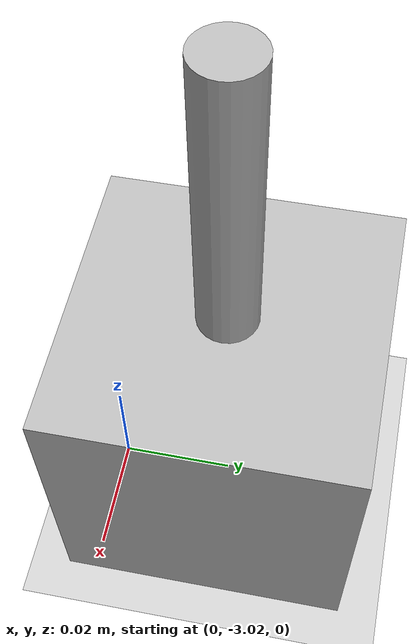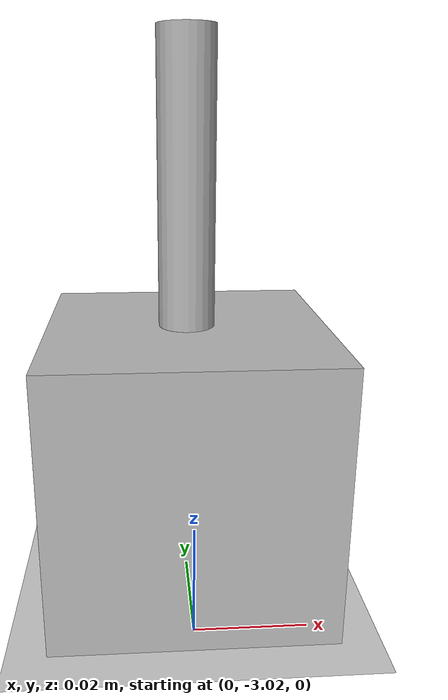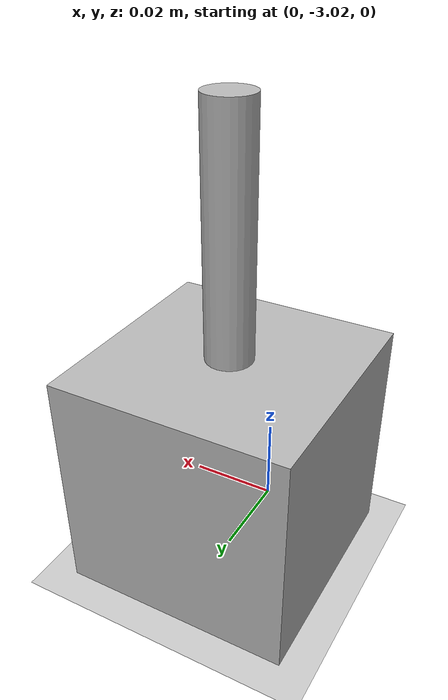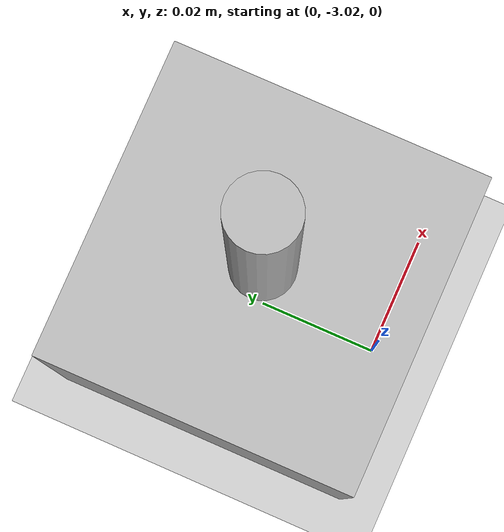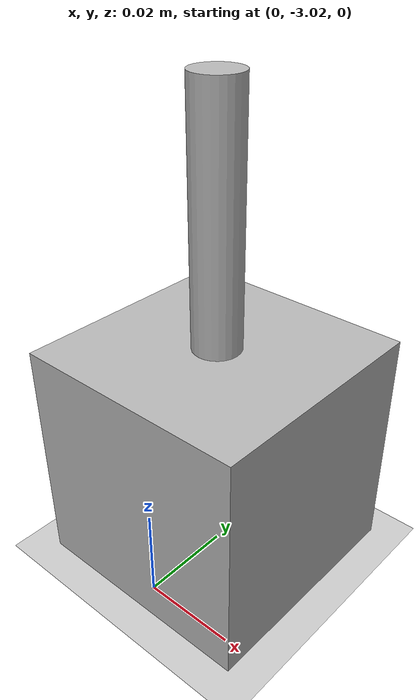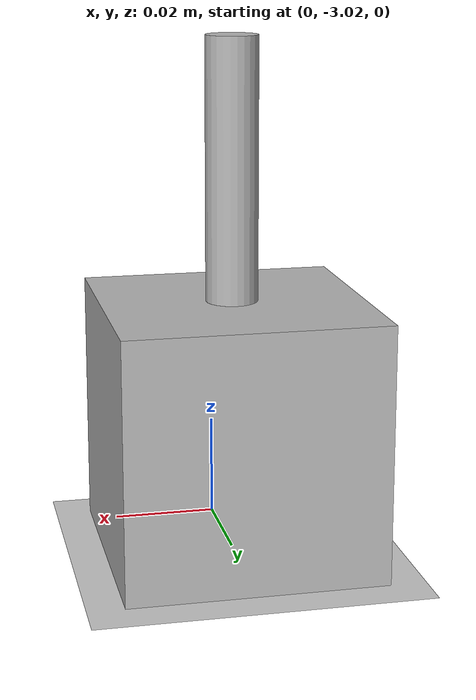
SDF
<sdf version="1.4">
  <world name="default">

    <scene>
      <ambient>0.4 0.4 0.4 1</ambient>
      <background>0.7 0.7 0.7 1</background>
      <shadows>true</shadows>
    </scene>

    <!-- A global light source -->
    <include>
      <uri>model://sun</uri>
    </include>

    <!-- A ground plane -->
    <include>
      <uri>model://ground_plane</uri>
    </include>

    <model name="wirelessReceiver">
      <static>true</static>
      <pose>0 -3 0.025 0 0 0</pose>
      <link name="link">
        <inertial>
          <mass>0.1</mass>
        </inertial>
        <visual name="base">
          <geometry>
            <box>
              <size>.05 .05 .05</size>
            </box>
          </geometry>
        </visual>
        <visual name="antenna">
          <pose>0 0 .04 0 0 0</pose>
          <geometry>
            <cylinder>
              <radius>.005</radius>
              <length>.07</length>
            </cylinder>
          </geometry>
        </visual>
        <sensor name="wirelessTransmitter" type="wireless_transmitter">
          <always_on>1</always_on>
          <update_rate>1</update_rate>
          <visualize>true</visualize>
          <transceiver>
            <essid>osrf</essid>
            <frequency>2442.0</frequency>
            <power>14.5</power>
            <gain>2.6</gain>
          </transceiver>
        </sensor>
      </link>
    </model>

    <physics type="ode">
      <real_time_update_rate>1000.0</real_time_update_rate>
      <max_step_size>0.001</max_step_size>
      <real_time_factor>1</real_time_factor>
      <ode>
        <solver>
          <type>quick</type>
          <iters>150</iters>
          <precon_iters>0</precon_iters>
          <sor>1.400000</sor>
          <use_dynamic_moi_rescaling>1</use_dynamic_moi_rescaling>
        </solver>
        <constraints>
          <cfm>0.00001</cfm>
          <erp>0.2</erp>
          <contact_max_correcting_vel>2000.000000</contact_max_correcting_vel>
          <contact_surface_layer>0.01000</contact_surface_layer>
        </constraints>
      </ode>
    </physics>
  </world>

</sdf>
